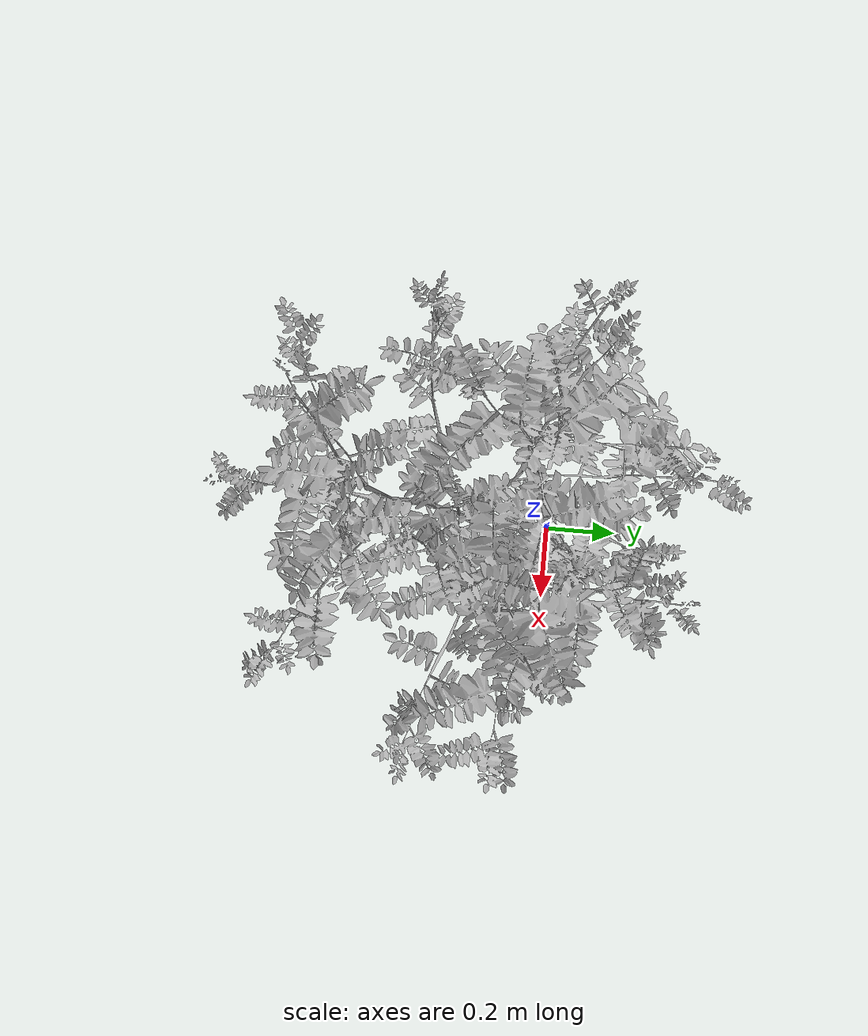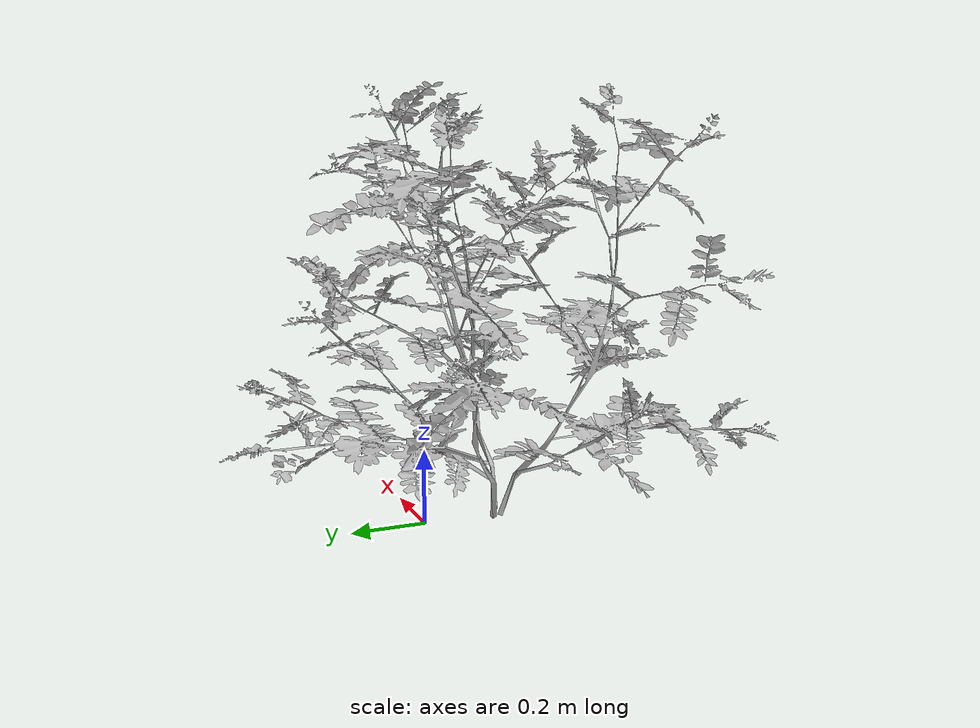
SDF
<?xml version="1.0" ?>
<sdf version="1.9">
  <model name="shrub">
    <static>true</static>
    <link name="link">
      <visual name="visual">
        <geometry>
          <mesh>
            <uri>model://shrub/meshes/model.dae</uri>
          </mesh>
        </geometry>
      </visual>
      <collision name="collision">
        <geometry>
          <box>
            <size>1 1 1</size>
          </box>
        </geometry>
      </collision>
    </link>
  </model>
</sdf>
